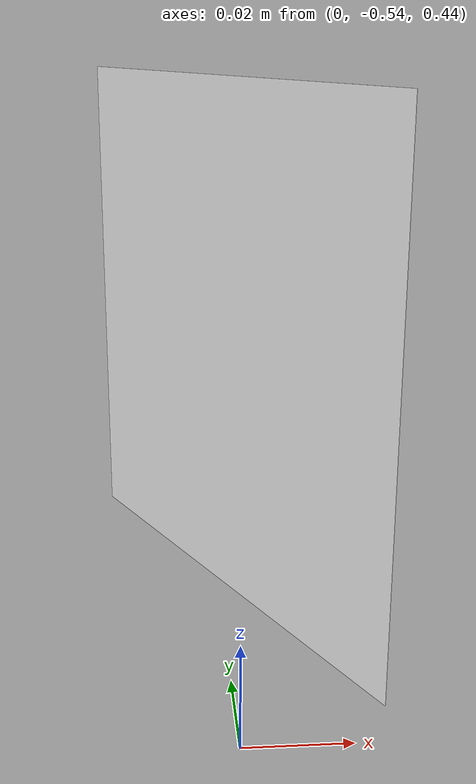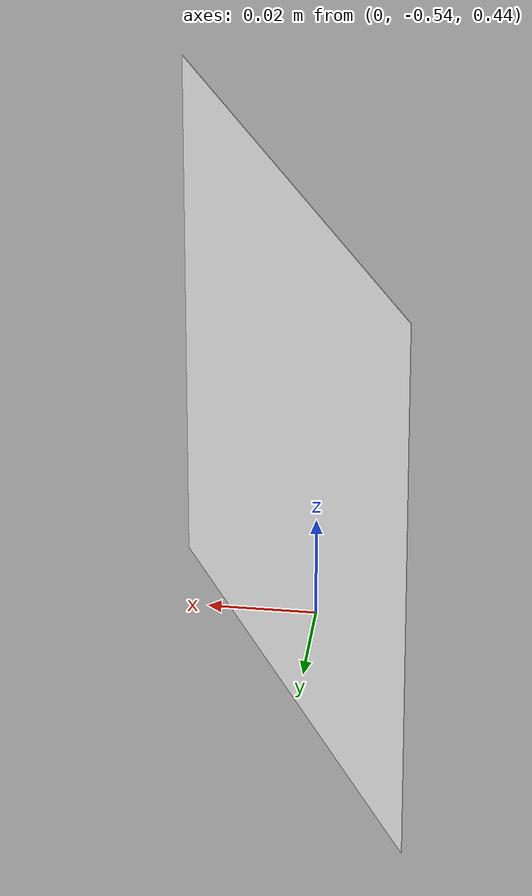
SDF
<?xml version="1.0" ?>
<sdf version="1.9">
  <world name="default">

    <!-- ========== MODELLI ========== -->
    <include>
      <uri>https://fuel.gazebosim.org/1.0/OpenRobotics/models/Sun</uri>
    </include>

    <include>
      <uri>https://fuel.gazebosim.org/1.0/OpenRobotics/models/Ground Plane</uri>
    </include>

    <include>
      <uri>model://aruco_tag</uri>
      <name>aruco_tag</name>
      <pose>0.0 -0.5 0.5 1.57 0 2.07</pose>
      <static>false</static>
    </include>

    <gravity>0 0 0</gravity>

    <gui fullscreen='0'>
      <camera name='user_camera'>
        <pose>4.927360 -4.376610 3.740080 0.000000 0.275643 2.356190</pose>
        <view_controller>orbit</view_controller>
      </camera>
    </gui>

  </world>
</sdf>

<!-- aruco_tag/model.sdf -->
<sdf version='1.9'>
  <model name='aruco_tag'>
    <static>false</static> <!-- era true per gli altri punti ,false per il 2c-->
    <pose>0 0 0.001 0 0 0</pose>
    <link name='base'>
      <visual name='base_visual'>

        <geometry>
          <plane>
            <normal>0 0 1</normal>
            <size>0.1 0.1</size>
          </plane>
        </geometry>
        <material>
          <diffuse>1 1 1 1</diffuse>
          <specular>0.4 0.4 0.4 1</specular>
          <pbr>
            <metal>
              <albedo_map>model://aruco_tag/aruco_tag.png</albedo_map>
            </metal>
          </pbr>
        </material>
      </visual>
    </link>
  </model>
</sdf>
